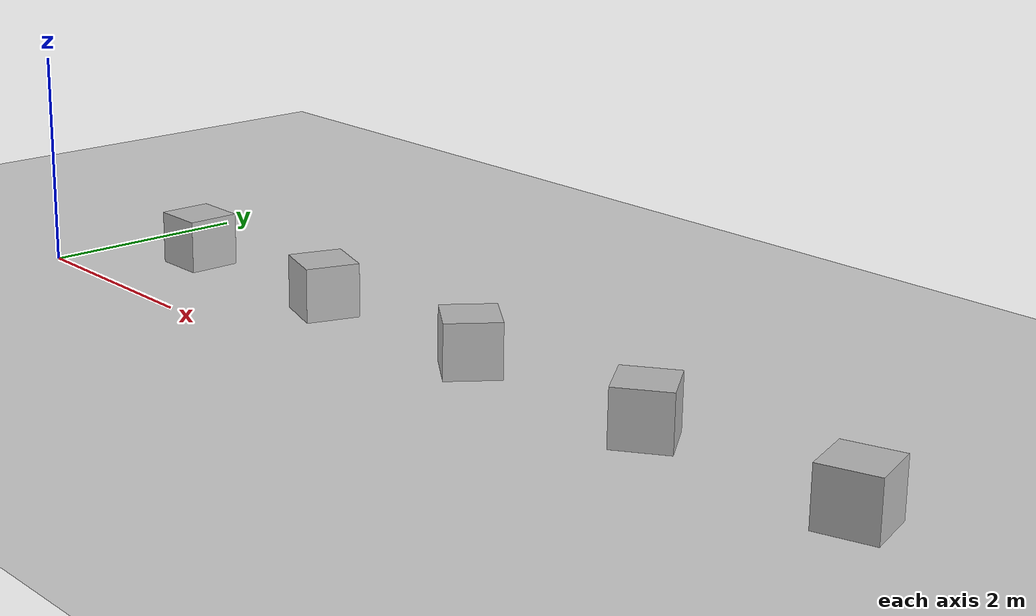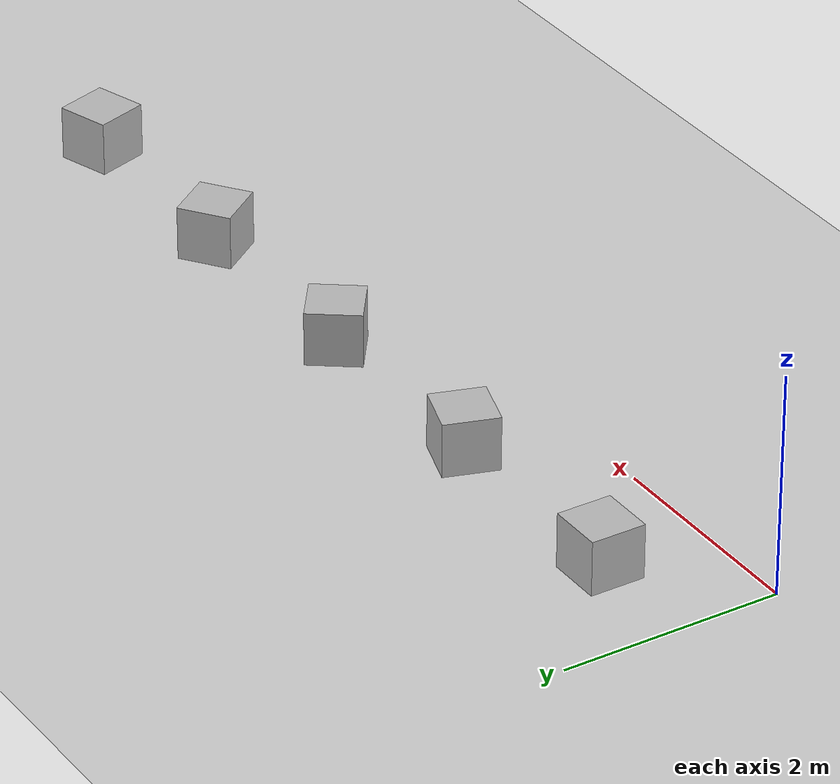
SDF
<sdf version='1.10'>
  <world name='empty'>
    <physics name='1ms' type='ignored'>
      <max_step_size>0.001</max_step_size>
      <real_time_factor>1</real_time_factor>
      <real_time_update_rate>1000</real_time_update_rate>
    </physics>
    <plugin name='gz::sim::systems::Physics' filename='gz-sim-physics-system'/>
    <plugin name='gz::sim::systems::UserCommands' filename='gz-sim-user-commands-system'/>
    <plugin name='gz::sim::systems::SceneBroadcaster' filename='gz-sim-scene-broadcaster-system'/>
    <plugin name='gz::sim::systems::Contact' filename='gz-sim-contact-system'/>
    <plugin name='gz::sim::systems::Sensors' filename='gz-sim-sensors-system'/>
    <gravity>0 0 -9.8000000000000007</gravity>
    <magnetic_field>5.5644999999999998e-06 2.2875799999999999e-05 -4.2388400000000002e-05</magnetic_field>
    <atmosphere type='adiabatic'/>
    <scene>
      <ambient>0.400000006 0.400000006 0.400000006 1</ambient>
      <background>0.699999988 0.699999988 0.699999988 1</background>
      <shadows>true</shadows>
    </scene>
    <model name='ground_plane'>
      <static>true</static>
      <link name='link'>
        <collision name='collision'>
          <geometry>
            <plane>
              <normal>0 0 1</normal>
              <size>100 100</size>
            </plane>
          </geometry>
          <surface>
            <friction>
              <ode/>
            </friction>
            <bounce/>
            <contact/>
          </surface>
        </collision>
        <visual name='visual'>
          <geometry>
            <plane>
              <normal>0 0 1</normal>
              <size>100 100</size>
            </plane>
          </geometry>
          <material>
            <ambient>0.800000012 0.800000012 0.800000012 1</ambient>
            <diffuse>0.800000012 0.800000012 0.800000012 1</diffuse>
            <specular>0.800000012 0.800000012 0.800000012 1</specular>
          </material>
        </visual>
        <pose>0 0 0 0 0 0</pose>
        <inertial>
          <pose>0 0 0 0 0 0</pose>
          <mass>1</mass>
          <inertia>
            <ixx>1</ixx>
            <ixy>0</ixy>
            <ixz>0</ixz>
            <iyy>1</iyy>
            <iyz>0</iyz>
            <izz>1</izz>
          </inertia>
        </inertial>
        <enable_wind>false</enable_wind>
      </link>
      <pose>0 0 0 0 0 0</pose>
      <self_collide>false</self_collide>
    </model>
    <include>
      <uri>file:///home/mazen-madbouly/exp_ws/src/erl_assignment_1/gz_models/aruco_box</uri>
      <name>aruco_box_0</name>
      <pose>1.0 1.0 0.25 0 0 1.57</pose>
    </include>

    <include>
      <uri>file:///home/mazen-madbouly/exp_ws/src/erl_assignment_1/gz_models/aruco_box</uri>
      <name>aruco_box_1</name>
      <pose>3 1 0.25 0 1.57 1.2566</pose>
    </include>

    <include>
      <uri>file:///home/mazen-madbouly/exp_ws/src/erl_assignment_1/gz_models/aruco_box</uri>
      <name>aruco_box_2</name>
      <pose>5 1 0.25 0 3.14 2.5133</pose>
    </include>

    <include>
      <uri>file:///home/mazen-madbouly/exp_ws/src/erl_assignment_1/gz_models/aruco_box</uri>
      <name>aruco_box_3</name>
      <pose>7 1 0.25 0 4.71 3.7699</pose>
    </include>

    <include>
      <uri>file:///home/mazen-madbouly/exp_ws/src/erl_assignment_1/gz_models/aruco_box</uri>
      <name>aruco_box_4</name>
      <pose>9 1 0.25 0 0 5.0265</pose>
    </include>

    <light name='sun' type='directional'>
      <pose>0 0 10 0 0 0</pose>
      <cast_shadows>true</cast_shadows>
      <intensity>1</intensity>
      <direction>-0.5 0.10000000000000001 -0.90000000000000002</direction>
      <diffuse>0.800000012 0.800000012 0.800000012 1</diffuse>
      <specular>0.200000003 0.200000003 0.200000003 1</specular>
      <attenuation>
        <range>1000</range>
        <linear>0.01</linear>
        <constant>0.90000000000000002</constant>
        <quadratic>0.001</quadratic>
      </attenuation>
      <spot>
        <inner_angle>0</inner_angle>
        <outer_angle>0</outer_angle>
        <falloff>0</falloff>
      </spot>
    </light>
  </world>
</sdf>

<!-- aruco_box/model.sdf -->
<sdf version="1.5">

 <model name='aruco_box'>
      <pose>0 0 0.25 0 -0 0</pose>
      <link name='link'>
        <inertial>
          <mass>1</mass>
          <inertia>
            <ixx>0.166667</ixx>
            <ixy>0</ixy>
            <ixz>0</ixz>
            <iyy>0.166667</iyy>
            <iyz>0</iyz>
            <izz>0.166667</izz>
          </inertia>
          <pose>0 0 0 0 -0 0</pose>
        </inertial>
        <collision name='collision'>
          <geometry>
            <box>
              <size>0.5 0.5 0.5</size>
            </box>
          </geometry>
          <surface>
            <contact>
              <ode/>
            </contact>
            <bounce/>
            <friction>
              <torsional>
                <ode/>
              </torsional>
              <ode/>
            </friction>
          </surface>
          <max_contacts>10</max_contacts>
        </collision>
        <visual name='aruco_box_mesh'>
          <geometry>
            <mesh>
                <uri>model://aruco_box/model.dae</uri>
                <scale>0.25 0.25 0.25</scale>
            </mesh>
          </geometry>
        </visual>
        <self_collide>0</self_collide>
        <enable_wind>0</enable_wind>
        <kinematic>0</kinematic>
      </link>
    </model>
    </sdf>
